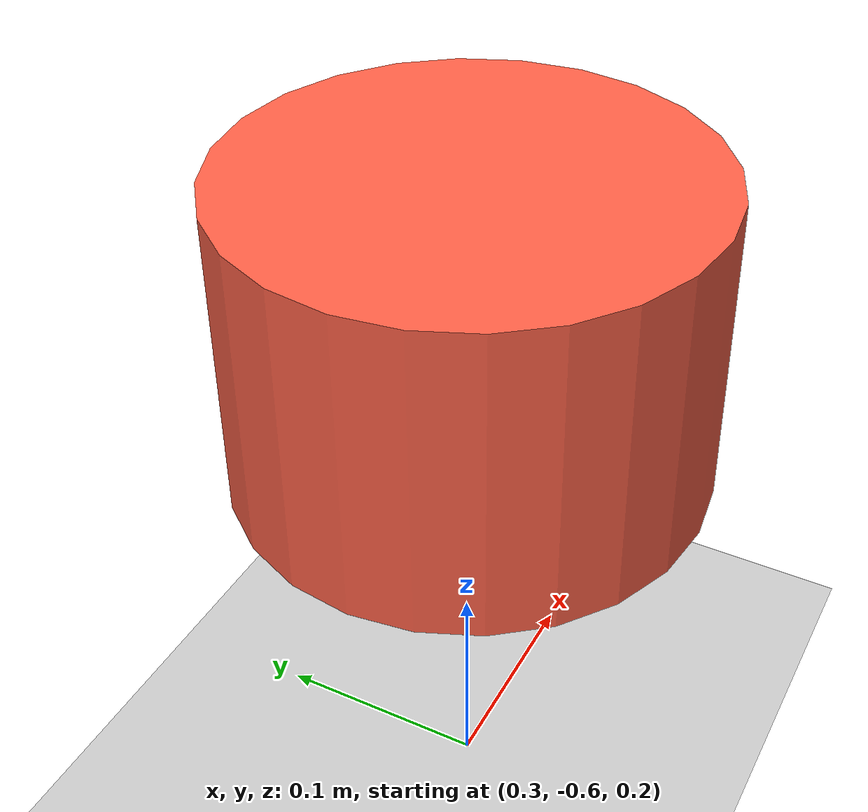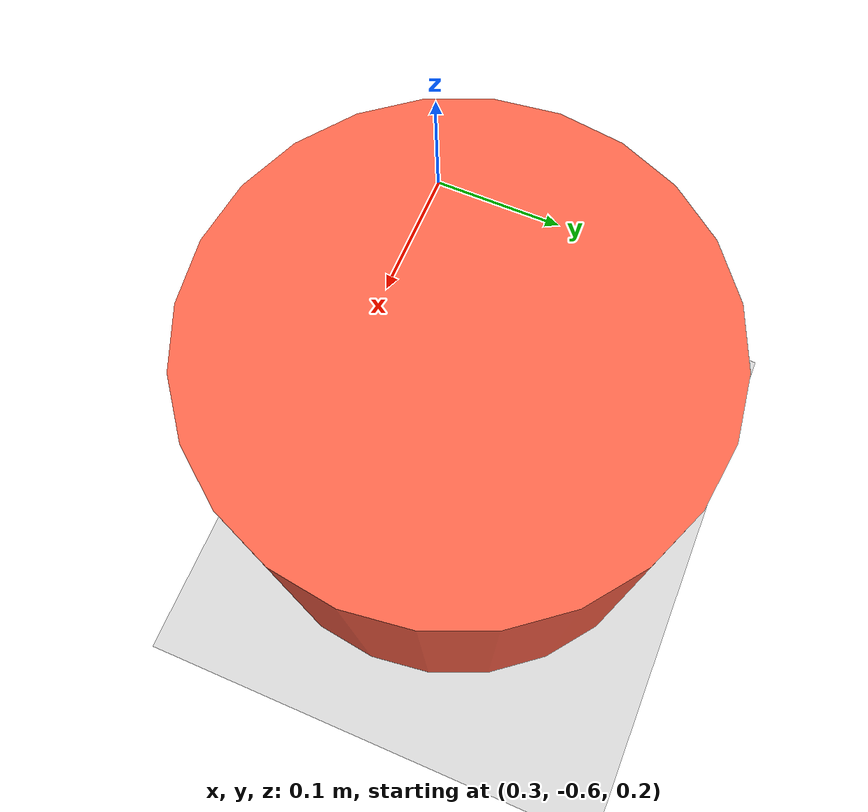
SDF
<?xml version="1.0" ?>
<sdf version='1.4'>
  <world name='default'>

    <physics type='ode'>
      <max_step_size>0.001</max_step_size>
      <real_time_factor>1</real_time_factor>
      <real_time_update_rate>1000</real_time_update_rate>
      <gravity>0 0 -9.8</gravity>
    </physics>

    <spherical_coordinates>
      <surface_model>EARTH_WGS84</surface_model>
      <latitude_deg>0</latitude_deg>
      <longitude_deg>0</longitude_deg>
      <elevation>0</elevation>
      <heading_deg>0</heading_deg>
    </spherical_coordinates>

    <!-- A global light source -->
   <scene>
      <sky>
        <clouds>
          <speed>12</speed>
        </clouds>
      </sky>
   </scene>

   <include>
     <uri>model://sun</uri>
   </include>

    <!-- A ground plane -->
    <include>
      <uri>model://ground_plane</uri>
    </include>

    <model name="small_cylinder_1" >
      <pose>0.5 -0.5 0.2 0 0 0</pose>
      <include>
	<uri>model://small_cylinder</uri>
      </include>
    </model>

  </world>
</sdf>

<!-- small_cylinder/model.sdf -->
<sdf version='1.4'>
  <model name="small_cylinder">
    <link name="link" >
      <pose>0 0 0.1 0 0 0</pose>
      <inertial>
        <mass>0.5</mass>
        <inertia>
          <!-- http://answers.gazebosim.org/question/4372/the-inertia-matrix-explained/ -->
          <ixx>0.005914</ixx>    <!-- for a box: ixx = 0.083 * mass * (3*r*r + h*h) -->
          <ixy>0.0</ixy>         <!-- for a box: ixy = 0 -->
          <ixz>0.0</ixz>         <!-- for a box: ixz = 0 -->
          <iyy>0.005914</iyy>    <!-- for a box: iyy = 0.083 * mass * (3*r*r + h*h) -->
          <iyz>0.0</iyz>         <!-- for a box: iyz = 0 -->
          <izz>0.010000</izz>    <!-- for a box: izz = 0.5 * mass * (r*r) -->
        </inertia>
      </inertial>
      <collision name="collision">
        <geometry>
          <cylinder>
            <length>0.2</length>
            <radius>0.15</radius>
          </cylinder>
        </geometry>
      </collision>
      <visual name="visual">
        <geometry>
          <cylinder>
            <length>0.2</length>
            <radius>0.15</radius>
          </cylinder>
        </geometry>
        <material>
          <ambient>1.00 0.39 0.28 1</ambient> <!-- tomato -->
          <diffuse>1.00 0.38 0.28 1</diffuse>
          <specular>0.1 0.1 0.1 1</specular>
          <emissive>0 0 0 0</emissive>
        </material>
      </visual>
    </link>
  </model>
</sdf>
